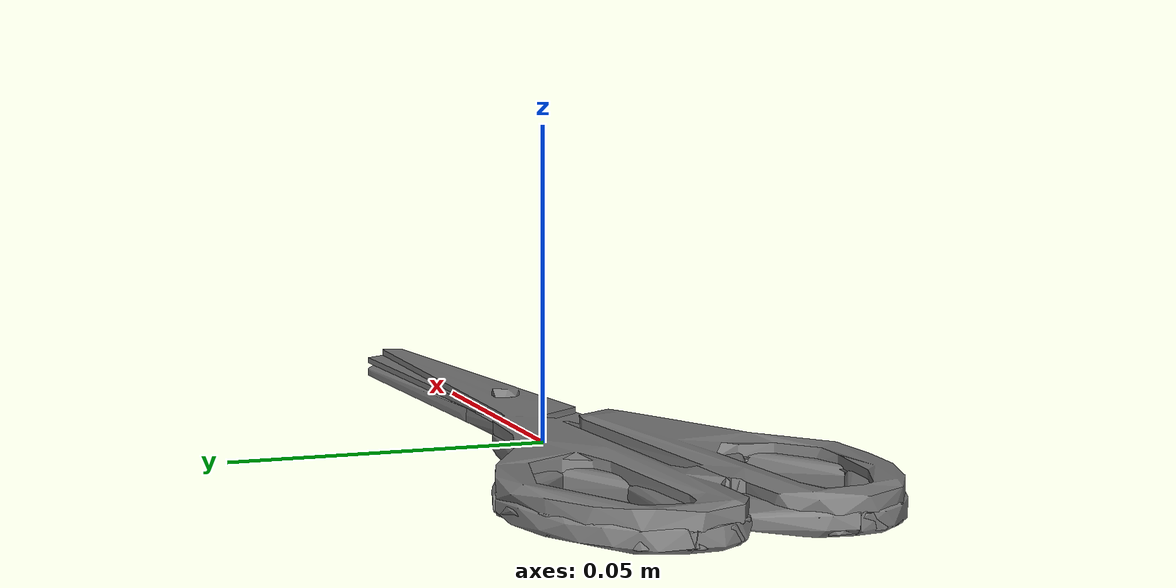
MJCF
<mujoco model="scissors1">
  <asset>
    <mesh file="../../meshes/train/scissors1/simple_mesh.stl" name="scissors1_mesh" scale="1 1 1"/>
    <mesh file="../../meshes/train/scissors1/scissors1_hull_1.stl" name="scissors1_hull_mesh_1" scale="1 1 1"/>
    <mesh file="../../meshes/train/scissors1/scissors1_hull_2.stl" name="scissors1_hull_mesh_2" scale="1 1 1"/>
    <mesh file="../../meshes/train/scissors1/scissors1_hull_3.stl" name="scissors1_hull_mesh_3" scale="1 1 1"/>
    <mesh file="../../meshes/train/scissors1/scissors1_hull_4.stl" name="scissors1_hull_mesh_4" scale="1 1 1"/>
    <mesh file="../../meshes/train/scissors1/scissors1_hull_5.stl" name="scissors1_hull_mesh_5" scale="1 1 1"/>
    <mesh file="../../meshes/train/scissors1/scissors1_hull_6.stl" name="scissors1_hull_mesh_6" scale="1 1 1"/>
    <mesh file="../../meshes/train/scissors1/scissors1_hull_7.stl" name="scissors1_hull_mesh_7" scale="1 1 1"/>
    <mesh file="../../meshes/train/scissors1/scissors1_hull_8.stl" name="scissors1_hull_mesh_8" scale="1 1 1"/>
    <mesh file="../../meshes/train/scissors1/scissors1_hull_9.stl" name="scissors1_hull_mesh_9" scale="1 1 1"/>
    <mesh file="../../meshes/train/scissors1/scissors1_hull_10.stl" name="scissors1_hull_mesh_10" scale="1 1 1"/>
    <mesh file="../../meshes/train/scissors1/scissors1_hull_11.stl" name="scissors1_hull_mesh_11" scale="1 1 1"/>
    <mesh file="../../meshes/train/scissors1/scissors1_hull_12.stl" name="scissors1_hull_mesh_12" scale="1 1 1"/>
    <mesh file="../../meshes/train/scissors1/scissors1_hull_13.stl" name="scissors1_hull_mesh_13" scale="1 1 1"/>
  </asset>
  <worldbody>
    <body>
      <body name="object">
        <geom pos="0 0 0" mesh="scissors1_mesh" type="mesh" contype="0" conaffinity="0" group="1"/>
        <geom pos="0 0 0" mesh="scissors1_hull_mesh_1" type="mesh" margin="0.001" solimp="0.998 0.998 0.001" solref="0.001 1" density="2000" friction="0.95 0.3 0.1" group="0" condim="4"/>
        <geom pos="0 0 0" mesh="scissors1_hull_mesh_2" type="mesh" margin="0.001" solimp="0.998 0.998 0.001" solref="0.001 1" density="2000" friction="0.95 0.3 0.1" group="0" condim="4"/>
        <geom pos="0 0 0" mesh="scissors1_hull_mesh_3" type="mesh" margin="0.001" solimp="0.998 0.998 0.001" solref="0.001 1" density="2000" friction="0.95 0.3 0.1" group="0" condim="4"/>
        <geom pos="0 0 0" mesh="scissors1_hull_mesh_4" type="mesh" margin="0.001" solimp="0.998 0.998 0.001" solref="0.001 1" density="2000" friction="0.95 0.3 0.1" group="0" condim="4"/>
        <geom pos="0 0 0" mesh="scissors1_hull_mesh_5" type="mesh" margin="0.001" solimp="0.998 0.998 0.001" solref="0.001 1" density="2000" friction="0.95 0.3 0.1" group="0" condim="4"/>
        <geom pos="0 0 0" mesh="scissors1_hull_mesh_6" type="mesh" margin="0.001" solimp="0.998 0.998 0.001" solref="0.001 1" density="2000" friction="0.95 0.3 0.1" group="0" condim="4"/>
        <geom pos="0 0 0" mesh="scissors1_hull_mesh_7" type="mesh" margin="0.001" solimp="0.998 0.998 0.001" solref="0.001 1" density="2000" friction="0.95 0.3 0.1" group="0" condim="4"/>
        <geom pos="0 0 0" mesh="scissors1_hull_mesh_8" type="mesh" margin="0.001" solimp="0.998 0.998 0.001" solref="0.001 1" density="2000" friction="0.95 0.3 0.1" group="0" condim="4"/>
        <geom pos="0 0 0" mesh="scissors1_hull_mesh_9" type="mesh" margin="0.001" solimp="0.998 0.998 0.001" solref="0.001 1" density="2000" friction="0.95 0.3 0.1" group="0" condim="4"/>
        <geom pos="0 0 0" mesh="scissors1_hull_mesh_10" type="mesh" margin="0.001" solimp="0.998 0.998 0.001" solref="0.001 1" density="2000" friction="0.95 0.3 0.1" group="0" condim="4"/>
        <geom pos="0 0 0" mesh="scissors1_hull_mesh_11" type="mesh" margin="0.001" solimp="0.998 0.998 0.001" solref="0.001 1" density="2000" friction="0.95 0.3 0.1" group="0" condim="4"/>
        <geom pos="0 0 0" mesh="scissors1_hull_mesh_12" type="mesh" margin="0.001" solimp="0.998 0.998 0.001" solref="0.001 1" density="2000" friction="0.95 0.3 0.1" group="0" condim="4"/>
        <geom pos="0 0 0" mesh="scissors1_hull_mesh_13" type="mesh" margin="0.001" solimp="0.998 0.998 0.001" solref="0.001 1" density="2000" friction="0.95 0.3 0.1" group="0" condim="4"/>
      </body>
      <site rgba="0 0 0 0" size="0.005" pos="0 0 -0.001" name="bottom_site"/>
      <site rgba="0 0 0 0" size="0.005" pos="0 0 0.02" name="top_site"/>
      <site rgba="0 0 0 0" size="0.005" pos="0.0375 0.02 0" name="horizontal_radius_site"/>
    </body>
  </worldbody>
</mujoco>
